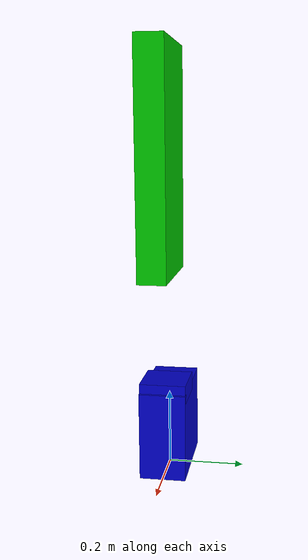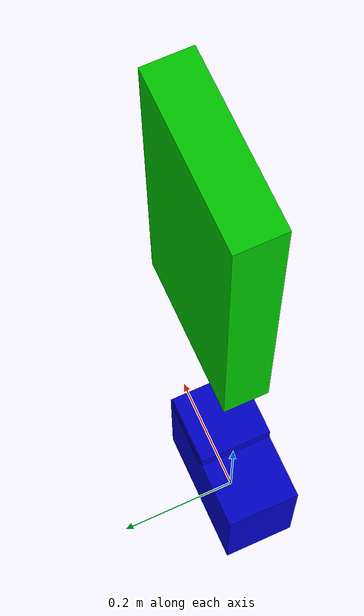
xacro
<?xml version="1.0" ?>

<robot name="mrm" xmlns:xacro="http://www.ros.org/wiki/xacro">
    <material name="blue">
        <color rgba="0 0 0.8 1"/>
    </material>
    <material name="white">
        <color rgba="1.0 1.0 1.0 1"/>
    </material>
    <material name="green">
        <color rgba="0 0.8 0 1"/>
    </material>
    <link name="base_link">
        <visual>
            <origin rpy="0 0 0" xyz="0 0 0.115"/>
            <geometry>
                <box size="0.23 0.12 0.23"/>
            </geometry>
            <material name="blue"/>
        </visual>
    </link>

    <joint name="base_link__link1" type="fixed">
        <origin rpy="0 0 0" xyz="0 0 0"/>
        <parent link="base_link"/>
        <child link="link1"/>
    </joint>

    <link name="link1">
        <visual>
            <origin rpy="0 0 0" xyz="0.05 0 0.23"/>
            <geometry>
                <box size="0.115 0.12 0.05"/>
            </geometry>
            <material name="blue"/>
        </visual>
    </link>

    <joint name="link1__link2" type="revolute">
        <axis xyz="0 0 1" />
        <limit effort="1000.0" lower="-3.14" upper="3.14" velocity="0.5" />
        <origin rpy="0 0 0" xyz="0.05 0 0.27"/>
        <parent link="link1"/>
        <child link="link2"/>
    </joint>

    <link name="link2">
        <visual>
            <origin rpy="0 0 0" xyz="0.05 0 0.27"/>
            <geometry>
                <cylinder radius="0.025"  length="0.025"/>
            </geometry>
            <material name="white"/>
        </visual>
    </link>

    <joint name="link2__link3" type="fixed">
        <origin rpy="0 0 0" xyz="0 0 0"/>
        <parent link="link2"/>
        <child link="link3"/>
    </joint>

    <link name="link3">
        <visual>
            <origin rpy="0 0 0" xyz="0.05 0 0.55"/>
            <geometry>
                <box size="0.25 0.07 0.56"/>
            </geometry>
            <material name="green"/>
        </visual>
    </link>

</robot>
